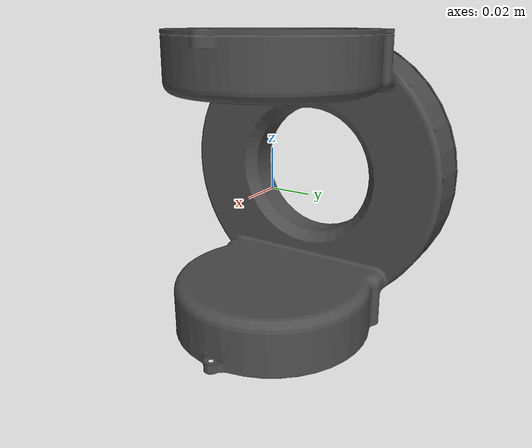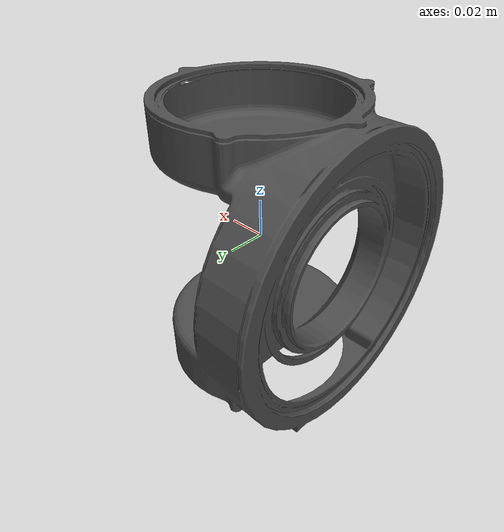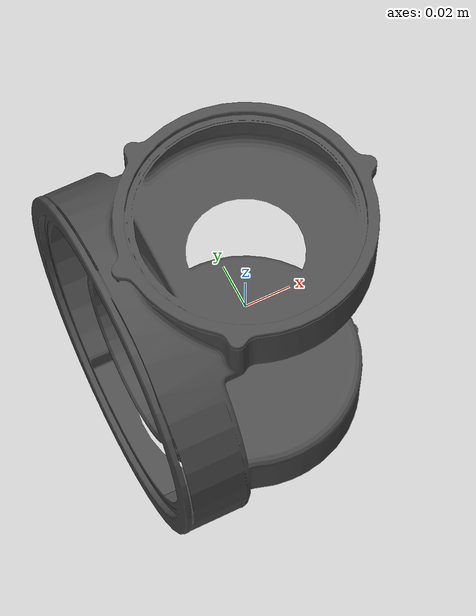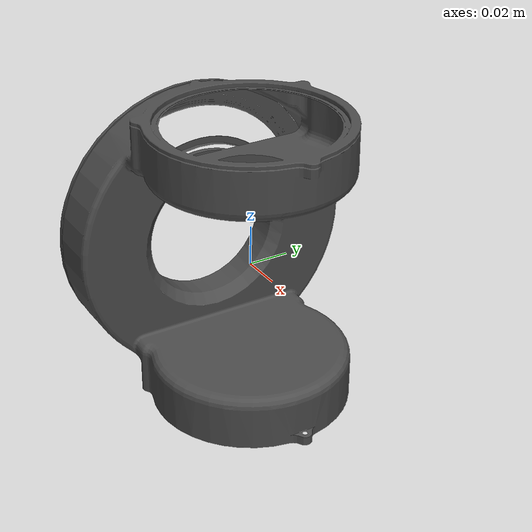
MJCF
<mujoco model="pelvis_1_link">
  <default>
    <default class="visual">
      <geom group="2" type="mesh" contype="0" conaffinity="0"/>
    </default>
    <default class="collision">
      <geom group="3" type="mesh"/>
    </default>
  </default>
  <asset>
    <material name="mtl_pelvis_1_link" specular="0.20000000000000004" shininess="1.0" rgba="0.29803922 0.29803922 0.29803922 1.0"/>
    <mesh file="pelvis_1_link.obj"/>
  </asset>
  <worldbody>
    <body name="pelvis_1_link">
      <geom material="mtl_pelvis_1_link" mesh="pelvis_1_link" class="visual"/>
      <geom mesh="pelvis_1_link" class="collision"/>
    </body>
  </worldbody>
</mujoco>
